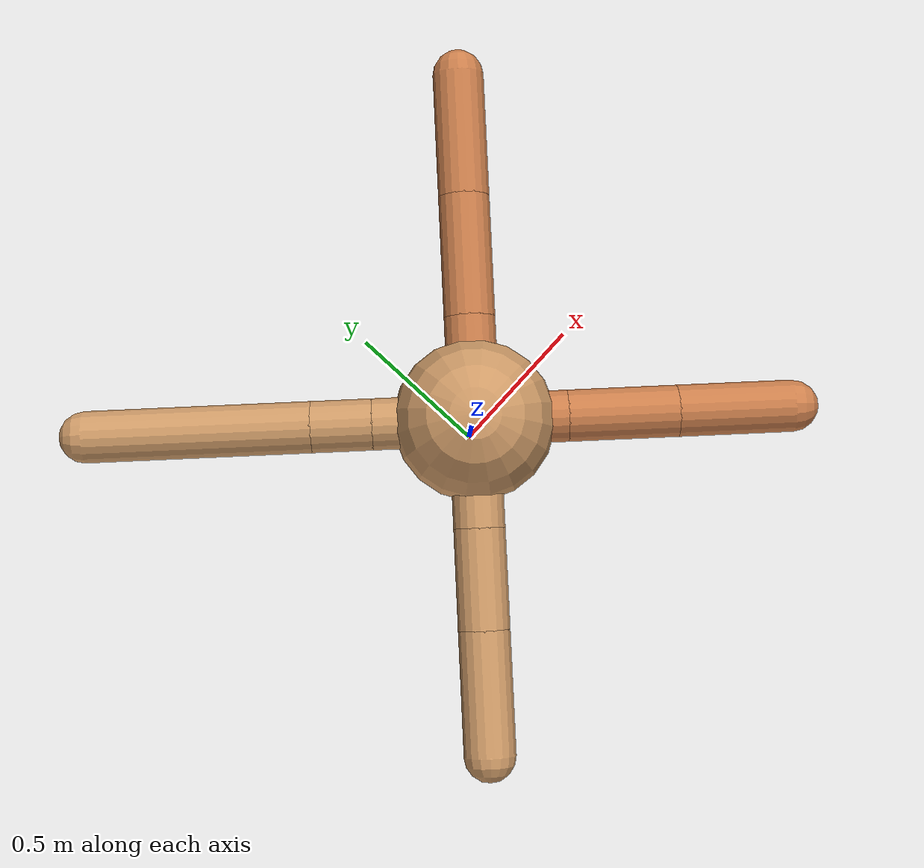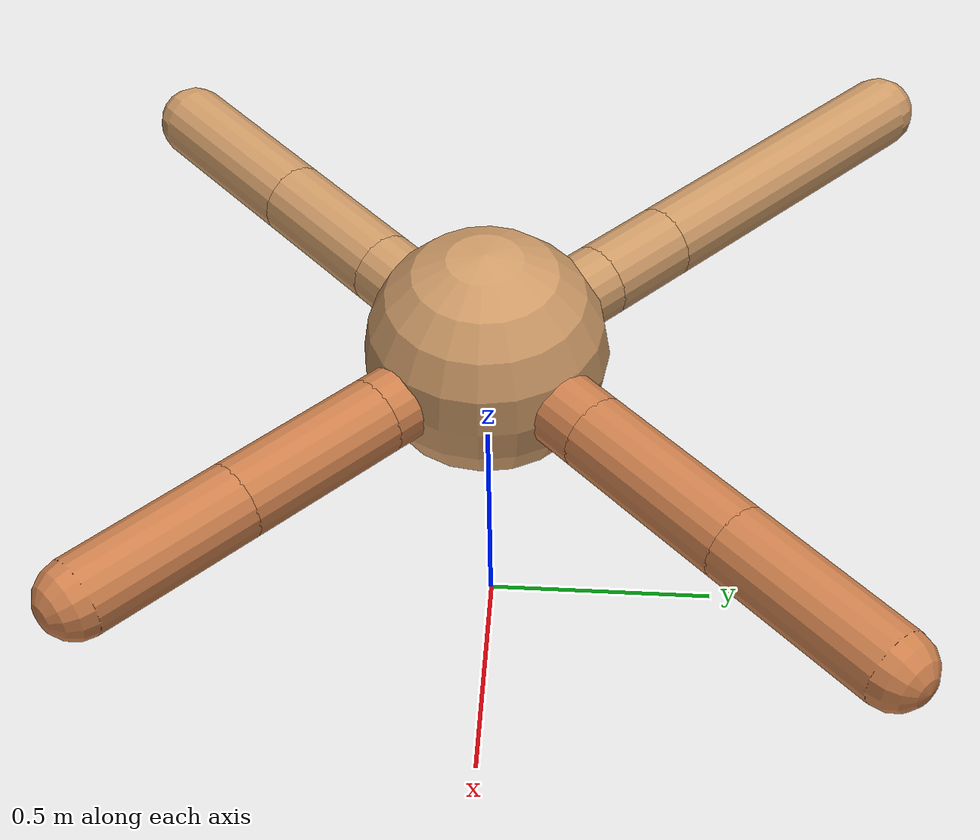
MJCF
<mujoco model="ant">
  <compiler angle="degree" coordinate="local" inertiafromgeom="true" />
  <option integrator="RK4" timestep="0.01" />
  <custom>
    <numeric data="0.0 0.0 0.55 1.0 0.0 0.0 0.0 0.0 1.0 0.0 -1.0 0.0 -1.0 0.0 1.0" name="init_qpos" />
  </custom>
  <default>
    <joint armature="1" damping="1" limited="true" />
    <geom conaffinity="0" condim="3" density="5.0" friction="1.5 0.1 0.1" margin="0.01" rgba="0.8 0.6 0.4 1" />
  </default>
  <worldbody>
    <body name="torso" pos="0 0 0.75">
      <geom name="torso_geom" pos="0 0 0" size="0.25" type="sphere" />

      <body name="front_left_leg" pos="0 0 0">
        <geom fromto="0.0 0.0 0.0 0.22595277395963909 0.22595277395963909 0.0" name="aux_1_geom" size="0.08" type="capsule" rgba=".8 .5 .3 1" />
        <body name="aux_1" pos="0.22595277395963909 0.22595277395963909 0.0">
          <joint axis="0 0 1" name="hip_1" pos="0.0 0.0 0.0" range="-40 40" type="hinge" />
          <geom fromto="0.0 0.0 0.0 0.2680082725373616 0.2680082725373616 0.0" name="left_leg_geom" size="0.08" type="capsule" rgba=".8 .5 .3 1" />
          <body pos="0.2680082725373616 0.2680082725373616 0.0" name="front_left_foot">
            <joint axis="-1 1 0" name="ankle_1" pos="0.0 0.0 0.0" range="30 100" type="hinge" />
            <geom fromto="0.0 0.0 0.0 0.2743255476585423 0.2743255476585423 0.0" name="left_ankle_geom" size="0.08" type="capsule" rgba=".8 .5 .3 1" />
          </body>
        </body>
      </body>
      <body name="front_right_leg" pos="0 0 0">
        <geom fromto="0.0 0.0 0.0 -0.22127425825807412 0.22127425825807412 0.0" name="aux_2_geom" size="0.08" type="capsule" />
        <body name="aux_2" pos="-0.22127425825807412 0.22127425825807412 0.0">
          <joint axis="0 0 1" name="hip_2" pos="0.0 0.0 0.0" range="-40 40" type="hinge" />
          <geom fromto="0.0 0.0 0.0 -0.13274265348860378 0.13274265348860378 0.0" name="right_leg_geom" size="0.08" type="capsule" />
          <body pos="-0.13274265348860378 0.13274265348860378 0.0" name="front_right_foot">
            <joint axis="1 1 0" name="ankle_2" pos="0.0 0.0 0.0" range="-100 -30" type="hinge" />
            <geom fromto="0.0 0.0 0.0 -0.492417937559822 0.492417937559822 0.0" name="right_ankle_geom" size="0.08" type="capsule" />
          </body>
        </body>
      </body>
      <body name="left_back_leg" pos="0 0 0">
        <geom fromto="0.0 0.0 0.0 -0.23522868066881697 -0.23522868066881697 0.0" name="aux_3_geom" size="0.08" type="capsule" />
        <body name="aux_3" pos="-0.23522868066881697 -0.23522868066881697 0.0">
          <joint axis="0 0 1" name="hip_3" pos="0.0 0.0 0.0" range="-40 40" type="hinge" />
          <geom fromto="0.0 0.0 0.0 -0.2184679020580371 -0.2184679020580371 0.0" name="back_leg_geom" size="0.08" type="capsule" />
          <body pos="-0.2184679020580371 -0.2184679020580371 0.0" name="left_back_foot">
            <joint axis="-1 1 0" name="ankle_3" pos="0.0 0.0 0.0" range="-100 -30" type="hinge" />
            <geom fromto="0.0 0.0 0.0 -0.2678757965817091 -0.2678757965817091 0.0" name="third_ankle_geom" size="0.08" type="capsule" />
          </body>
        </body>
      </body>
      <body name="right_back_leg" pos="0 0 0">
        <geom fromto="0.0 0.0 0.0 0.20340655614936642 -0.20340655614936642 0.0" name="aux_4_geom" size="0.08" type="capsule" rgba=".8 .5 .3 1" />
        <body name="aux_4" pos="0.20340655614936642 -0.20340655614936642 0.0">
          <joint axis="0 0 1" name="hip_4" pos="0.0 0.0 0.0" range="-40 40" type="hinge" />
          <geom fromto="0.0 0.0 0.0 0.23903312624898457 -0.23903312624898457 0.0" name="rightback_leg_geom" size="0.08" type="capsule" rgba=".8 .5 .3 1" />
          <body pos="0.23903312624898457 -0.23903312624898457 0.0" name="right_back_foot">
            <joint axis="1 1 0" name="ankle_4" pos="0.0 0.0 0.0" range="30 100" type="hinge" />
            <geom fromto="0.0 0.0 0.0 0.25019252577022677 -0.25019252577022677 0.0" name="fourth_ankle_geom" size="0.08" type="capsule" rgba=".8 .5 .3 1" />
          </body>
        </body>
      </body>
    </body>
  </worldbody>
  <actuator>
    <motor ctrllimited="true" ctrlrange="-1.0 1.0" joint="hip_4" gear="150" />
    <motor ctrllimited="true" ctrlrange="-1.0 1.0" joint="ankle_4" gear="150" />
    <motor ctrllimited="true" ctrlrange="-1.0 1.0" joint="hip_1" gear="150" />
    <motor ctrllimited="true" ctrlrange="-1.0 1.0" joint="ankle_1" gear="150" />
    <motor ctrllimited="true" ctrlrange="-1.0 1.0" joint="hip_2" gear="150" />
    <motor ctrllimited="true" ctrlrange="-1.0 1.0" joint="ankle_2" gear="150" />
    <motor ctrllimited="true" ctrlrange="-1.0 1.0" joint="hip_3" gear="150" />
    <motor ctrllimited="true" ctrlrange="-1.0 1.0" joint="ankle_3" gear="150" />
  </actuator>
</mujoco>
